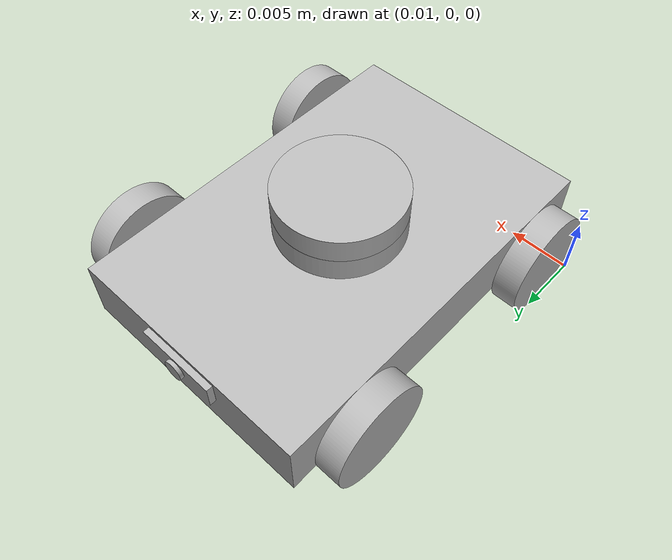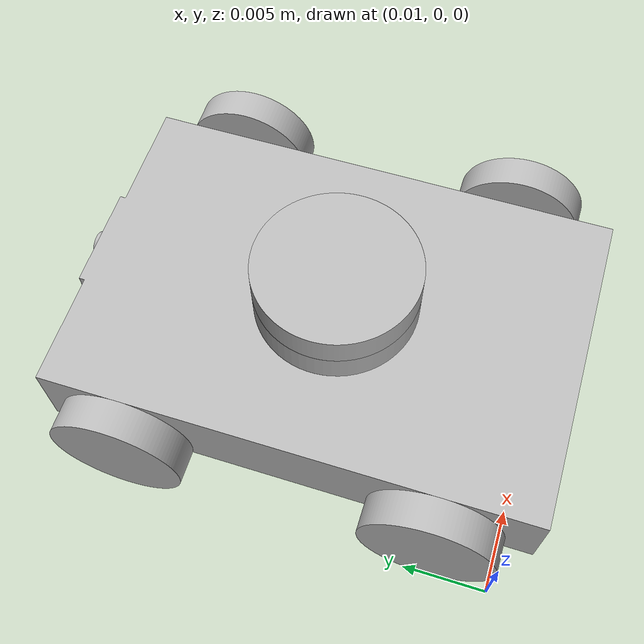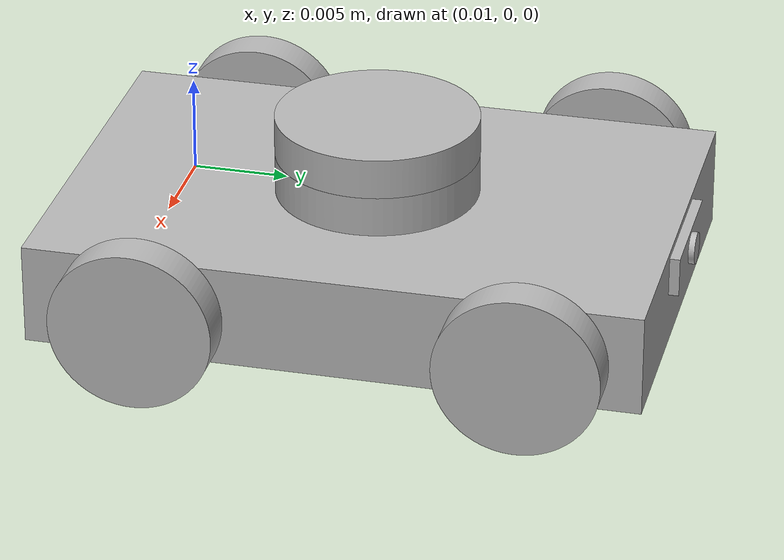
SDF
<?xml version='1.0' encoding='utf-8'?>
<sdf version="1.7">
    <world name="robot_world">
        <model name="robot_fourW">
            <link name="brw">
                <pose>0.0 0.0 0.0 0.0 -0.0 0.0</pose>
                <inertial>
                    <mass>0.0007891680745817905</mass>
                    <pose>0.034 0.003974860847171141 0.004034690807627012 0.0 0.0 0.0</pose>
                    <inertia>
                        <ixx>6.313344188978208e-09</ixx>
                        <iyy>3.4197285270257323e-09</iyy>
                        <izz>3.4197277116735114e-09</izz>
                        <ixy>0.0</ixy>
                        <iyz>-1.6543612251060553e-24</iyz>
                        <ixz>-1.3234889800848443e-23</ixz>
                    </inertia>
                </inertial>
                <visual name="brw_visual">
                    <geometry>
                        <mesh>
                            <uri>model://robot_fourW/meshes/brw.stl</uri>
                            <scale>0.001 0.001 0.001</scale>
                        </mesh>
                    </geometry>
                </visual>
                <collision name="brw_collision">
                    <geometry>
                        <mesh>
                            <uri>model://robot_fourW/meshes/brw.stl</uri>
                            <scale>0.001 0.001 0.001</scale>
                        </mesh>
                    </geometry>
                </collision>
            </link>
            <link name="base_link">
                <pose>0.0125 -0.002037749325439766 -4.998604814583918e-06 0.0 -0.0 0.0</pose>
                <inertial>
                    <mass>0.02494941699556569</mass>
                    <pose>0.010000253383063153 0.015059584943849494 0.004217585871022689 0.0 0.0 0.0</pose>
                    <inertia>
                        <ixx>1.8593069123257e-06</ixx>
                        <iyy>8.692521306422306e-07</iyy>
                        <izz>2.6006184492381023e-06</izz>
                        <ixy>-9.622031856110452e-11</ixy>
                        <iyz>-6.456019151724861e-10</iyz>
                        <ixz>-6.6673008412653336e-12</ixz>
                    </inertia>
                </inertial>
                <visual name="base_link_visual">
                    <geometry>
                        <mesh>
                            <uri>model://robot_fourW/meshes/base_link.stl</uri>
                            <scale>0.001 0.001 0.001</scale>
                        </mesh>
                    </geometry>
                </visual>
                <collision name="base_link_collision">
                    <geometry>
                        <mesh>
                            <uri>model://robot_fourW/meshes/base_link.stl</uri>
                            <scale>0.001 0.001 0.001</scale>
                        </mesh>
                    </geometry>
                </collision>
            </link>
            <link name="lidar">
                <pose>0.0125 -0.002037749325439766 -4.998604814583363e-06 0.0 -0.0 0.0</pose>
                <inertial>
                    <mass>0.0012330751165340462</mass>
                    <pose>0.010000000148488777 0.015000000223517418 0.009542240059091772 0.0 0.0 0.0</pose>
                    <inertia>
                        <ixx>8.117743024227962e-09</ixx>
                        <iyy>8.117745014833845e-09</iyy>
                        <izz>1.5413437961372473e-08</izz>
                        <ixy>-5.293955920339377e-23</ixy>
                        <iyz>0.0</iyz>
                        <ixz>-5.293955920339377e-23</ixz>
                    </inertia>
                </inertial>
                <visual name="lidar_visual">
                    <geometry>
                        <mesh>
                            <uri>model://robot_fourW/meshes/lidar.stl</uri>
                            <scale>0.001 0.001 0.001</scale>
                        </mesh>
                    </geometry>
                </visual>
                <collision name="lidar_collision">
                    <geometry>
                        <mesh>
                            <uri>model://robot_fourW/meshes/lidar.stl</uri>
                            <scale>0.001 0.001 0.001</scale>
                        </mesh>
                    </geometry>
                </collision>
            </link>
            <link name="flw">
                <pose>0.017542473532670137 -0.007133792047273415 -0.0015422400590917745 0.0 -0.0 0.0</pose>
                <inertial>
                    <mass>0.0007891680745817905</mass>
                    <pose>-0.0065424735326701415 0.02960865289444456 0.005576930866718788 0.0 0.0 0.0</pose>
                    <inertia>
                        <ixx>6.313344188978254e-09</ixx>
                        <iyy>3.419728527025825e-09</iyy>
                        <izz>3.419727711673723e-09</izz>
                        <ixy>-2.6469779601696886e-23</ixy>
                        <iyz>1.3234889800848443e-23</iyz>
                        <ixz>-1.3234889800848443e-23</ixz>
                    </inertia>
                </inertial>
                <visual name="flw_visual">
                    <geometry>
                        <mesh>
                            <uri>model://robot_fourW/meshes/flw.stl</uri>
                            <scale>0.001 0.001 0.001</scale>
                        </mesh>
                    </geometry>
                </visual>
                <collision name="flw_collision">
                    <geometry>
                        <mesh>
                            <uri>model://robot_fourW/meshes/flw.stl</uri>
                            <scale>0.001 0.001 0.001</scale>
                        </mesh>
                    </geometry>
                </collision>
            </link>
            <link name="frw">
                <pose>0.0015424735326701367 0.04386620795272658 -0.0015422400590917745 0.0 -0.0 0.0</pose>
                <inertial>
                    <mass>0.0007891680745817905</mass>
                    <pose>0.03245752646732986 -0.021391347105555437 0.005576930866718787 0.0 0.0 0.0</pose>
                    <inertia>
                        <ixx>6.31334418897836e-09</ixx>
                        <iyy>3.419728527025944e-09</iyy>
                        <izz>3.4197277116736172e-09</izz>
                        <ixy>0.0</ixy>
                        <iyz>1.3234889800848443e-23</iyz>
                        <ixz>2.6469779601696886e-23</ixz>
                    </inertia>
                </inertial>
                <visual name="frw_visual">
                    <geometry>
                        <mesh>
                            <uri>model://robot_fourW/meshes/frw.stl</uri>
                            <scale>0.001 0.001 0.001</scale>
                        </mesh>
                    </geometry>
                </visual>
                <collision name="frw_collision">
                    <geometry>
                        <mesh>
                            <uri>model://robot_fourW/meshes/frw.stl</uri>
                            <scale>0.001 0.001 0.001</scale>
                        </mesh>
                    </geometry>
                </collision>
            </link>
            <link name="blw">
                <pose>0.015542473532670137 0.007366207952726578 -0.0015422400590917745 0.0 -0.0 0.0</pose>
                <inertial>
                    <mass>0.0007891680745817908</mass>
                    <pose>-0.00454247353267014 -0.0033913471055554405 0.005576930866718788 0.0 0.0 0.0</pose>
                    <inertia>
                        <ixx>6.313344188978198e-09</ixx>
                        <iyy>3.4197285270258117e-09</iyy>
                        <izz>3.4197277116736172e-09</izz>
                        <ixy>0.0</ixy>
                        <iyz>-1.6543612251060553e-23</iyz>
                        <ixz>-1.3234889800848443e-23</ixz>
                    </inertia>
                </inertial>
                <visual name="blw_visual">
                    <geometry>
                        <mesh>
                            <uri>model://robot_fourW/meshes/blw.stl</uri>
                            <scale>0.001 0.001 0.001</scale>
                        </mesh>
                    </geometry>
                </visual>
                <collision name="blw_collision">
                    <geometry>
                        <mesh>
                            <uri>model://robot_fourW/meshes/blw.stl</uri>
                            <scale>0.001 0.001 0.001</scale>
                        </mesh>
                    </geometry>
                </collision>
            </link>
            <link name="camera">
                <pose>0.01261127142871171 -0.002037749325439764 1.879399958663375e-05 0.0 -0.0 0.0</pose>
                <inertial>
                    <mass>4.5012174053959215e-06</mass>
                    <pose>0.010019812846095197 0.030680517329393885 0.005248385672069328 0.0 0.0 0.0</pose>
                    <inertia>
                        <ixx>7.183941652729761e-13</ixx>
                        <iyy>1.3692702463027689e-12</iyy>
                        <izz>7.18394342110129e-13</izz>
                        <ixy>0.0</ixy>
                        <iyz>0.0</iyz>
                        <ixz>0.0</ixz>
                    </inertia>
                </inertial>
                <visual name="camera_visual">
                    <geometry>
                        <mesh>
                            <uri>model://robot_fourW/meshes/camera.stl</uri>
                            <scale>0.001 0.001 0.001</scale>
                        </mesh>
                    </geometry>
                </visual>
                <collision name="camera_collision">
                    <geometry>
                        <mesh>
                            <uri>model://robot_fourW/meshes/camera.stl</uri>
                            <scale>0.001 0.001 0.001</scale>
                        </mesh>
                    </geometry>
                </collision>
            </link>
            <joint name="base_link_joint_frw" type="revolute">
                <pose>0.03145752646732986 -0.021391207952726584 0.005577240059091775 0.0 0.0 0.0</pose>
                <parent>base_link</parent>
                <child>frw</child>
                <axis>
                    <xyz expressed_in="__model__">1.0 0.0 -0.0</xyz>
                </axis>
            </joint>
            <joint name="base_link_joint_brw" type="revolute">
                <pose>0.033 0.003975 0.004035 0.0 0.0 0.0</pose>
                <parent>base_link</parent>
                <child>brw</child>
                <axis>
                    <xyz expressed_in="__model__">1.0 0.0 -0.0</xyz>
                </axis>
            </joint>
            <joint name="base_link_joint_flw" type="revolute">
                <pose>-0.005542473532670136 0.029608792047273413 0.005577240059091775 0.0 0.0 0.0</pose>
                <parent>base_link</parent>
                <child>flw</child>
                <axis>
                    <xyz expressed_in="__model__">-1.0 0.0 0.0</xyz>
                </axis>
            </joint>
            <joint name="base_link_joint_blw" type="revolute">
                <pose>-0.0035424735326701363 -0.0033912079527265776 0.005577240059091775 0.0 0.0 0.0</pose>
                <parent>base_link</parent>
                <child>blw</child>
                <axis>
                    <xyz expressed_in="__model__">-1.0 0.0 0.0</xyz>
                </axis>
            </joint>
            <joint name="base_link_joint_lidar" type="revolute">
                <pose>0.009999999999999998 0.014999749325439765 0.008541998604814582 0.0 0.0 0.0</pose>
                <parent>base_link</parent>
                <child>lidar</child>
                <axis>
                    <xyz expressed_in="__model__">0.0 0.0 1.0</xyz>
                </axis>
            </joint>
            <joint name="base_link_joint_cam" type="fixed">
                <pose>0.010019728571288288 0.030530749325439765 0.0052482060004133664 0.0 0.0 0.0</pose>
                <parent>base_link</parent>
                <child>camera</child>
            </joint>
        </model>
    </world>
</sdf>
